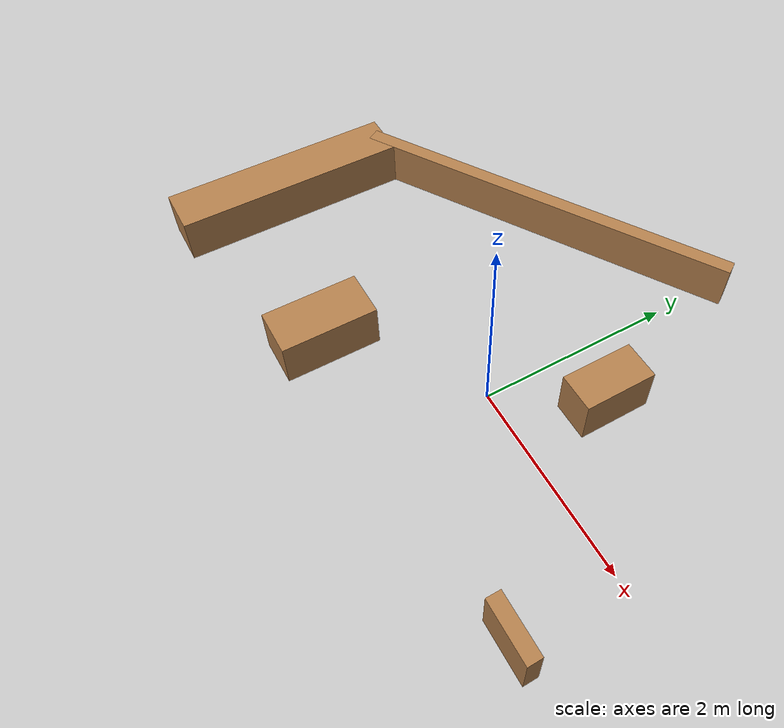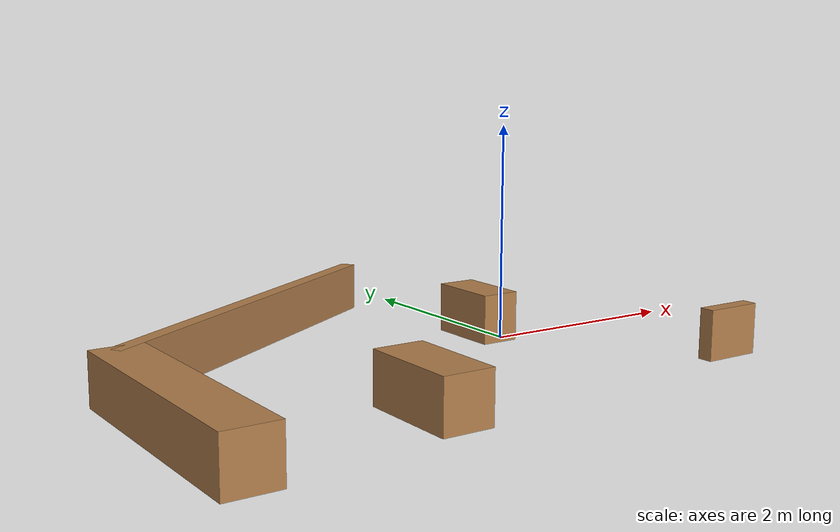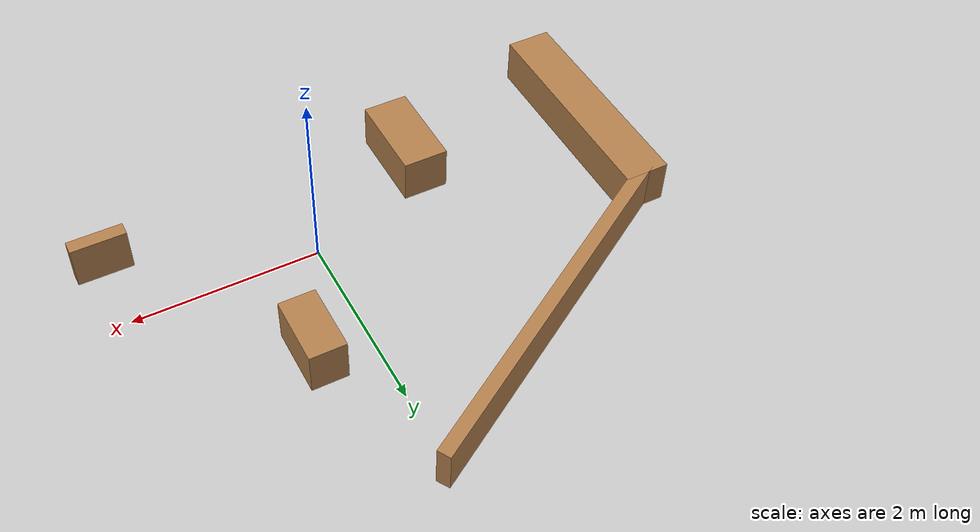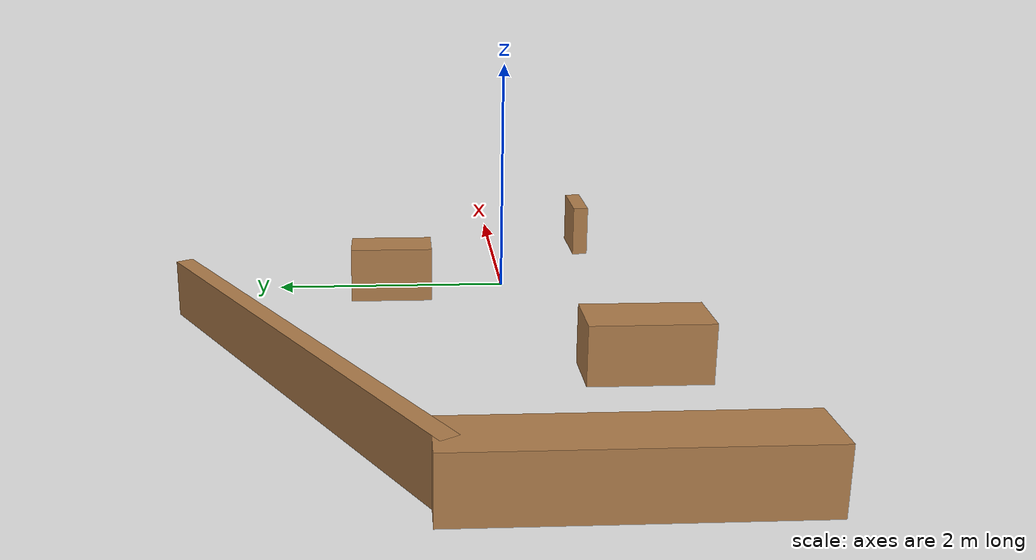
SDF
<?xml version='1.0'?>
<sdf version='1.8'>
  <model name='inner_walls'>
    <pose>0 0 0 0 0 0</pose>

    <link name='inner_wall_1'>
      <collision name='inner_wall_1_collision'>
        <geometry>
          <box>
            <size>0.6 0.15 0.5</size>
          </box>
        </geometry>
        <pose>2 -1 0 0 0 0</pose>
      </collision>
      <visual name='inner_wall_visual'>
        <pose>2 -1 0 0 0 0</pose>
        <geometry>
          <box>
            <size>0.6 0.15 0.5</size>
          </box>
        </geometry>
        <material>
          <script>
            <uri>file://media/materials/scripts/gazebo.material</uri>
            <name>Gazebo/Wood</name>
          </script>
          <ambient>1 1 1 1</ambient>
        </material>
      </visual>
    </link>

    <link name='inner_wall_2'>
      <collision name='inner_wall_2_collision'>
        <geometry>
          <box>
            <size>0.75 0.4 0.5</size>
          </box>
        </geometry>
        <pose>0.5 1 0 0 0 1.5708</pose>
      </collision>
      <visual name='inner_wall_2_visual'>
        <pose>0.5 1 0 0 0 1.5708</pose>
        <geometry>
          <box>
            <size>0.75 0.4 0.5</size>
          </box>
        </geometry>
        <material>
          <script>
            <uri>file://media/materials/scripts/gazebo.material</uri>
            <name>Gazebo/Wood</name>
          </script>
          <ambient>1 1 1 1</ambient>
        </material>
      </visual>
    </link>

    <link name='inner_wall_3'>
      <collision name='inner_wall_3_collision'>
        <geometry>
          <box>
            <size>1.0 0.5 0.5</size>
          </box>
        </geometry>
        <pose>-1.5 -1.0 0 0 0 1.5708</pose>
      </collision>
      <visual name='inner_wall_3_visual'>
        <pose>-1.5 -1.0 0 0 0 1.5708</pose>
        <geometry>
          <box>
            <size>1.0 0.5 0.5</size>
          </box>
        </geometry>
        <material>
          <script>
            <uri>file://media/materials/scripts/gazebo.material</uri>
            <name>Gazebo/Wood</name>
          </script>
          <ambient>1 1 1 1</ambient>
        </material>
      </visual>
    </link>

    <link name='inner_wall_4'>
      <collision name='inner_wall_4_collision'>
        <geometry>
          <box>
            <size>2.5 0.5 0.5</size>
          </box>
        </geometry>
        <pose>-3.5 -0.5 0 0 0 1.5708</pose>
      </collision>
      <visual name='inner_wall_4_visual'>
        <pose>-3.5 -0.5 0 0 0 1.5708</pose>
        <geometry>
          <box>
            <size>2.5 0.5 0.5</size>
          </box>
        </geometry>
        <material>
          <script>
            <uri>file://media/materials/scripts/gazebo.material</uri>
            <name>Gazebo/Wood</name>
          </script>
          <ambient>1 1 1 1</ambient>
        </material>
      </visual>
    </link>

        <link name='inner_wall_5'>
      <collision name='inner_wall_5_collision'>
        <geometry>
          <box>
            <size>4.25 0.15 0.5</size>
          </box>
        </geometry>
        <pose>-1.75 1.75 0 0 0 0.55</pose>
      </collision>
      <visual name='inner_wall_5_visual'>
        <pose>-1.75 1.75 0 0 0 0.55</pose>
        <geometry>
          <box>
            <size>4.25 0.15 0.5</size>
          </box>
        </geometry>
        <material>
          <script>
            <uri>file://media/materials/scripts/gazebo.material</uri>
            <name>Gazebo/Wood</name>
          </script>
          <ambient>1 1 1 1</ambient>
        </material>
      </visual>
    </link>

    <static>1</static>
  </model>
</sdf>
